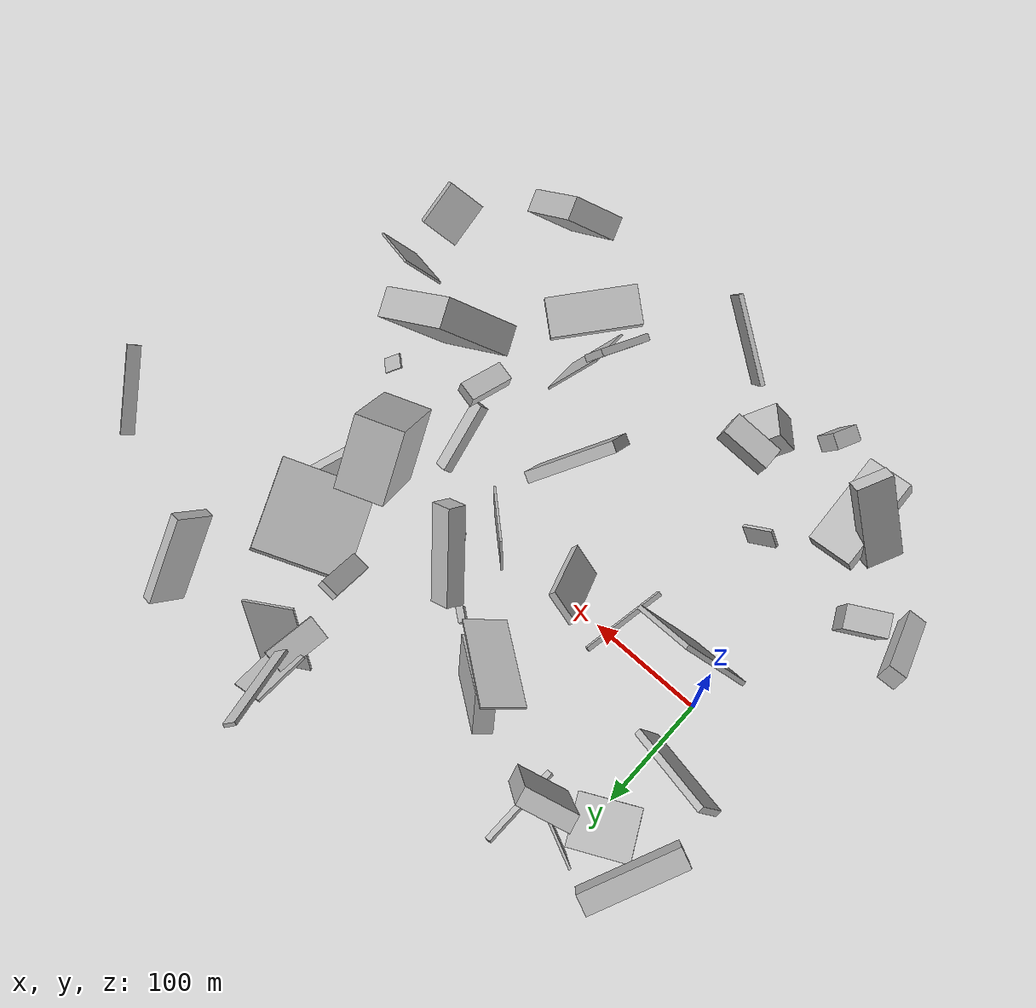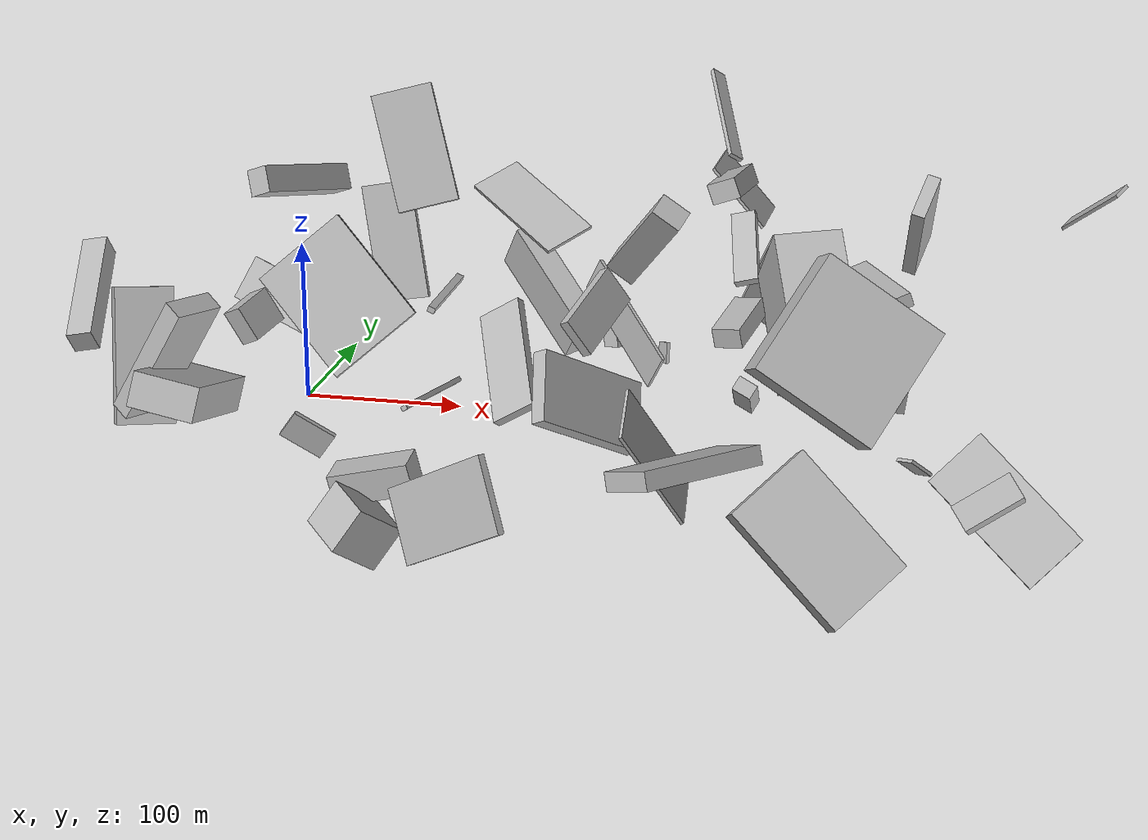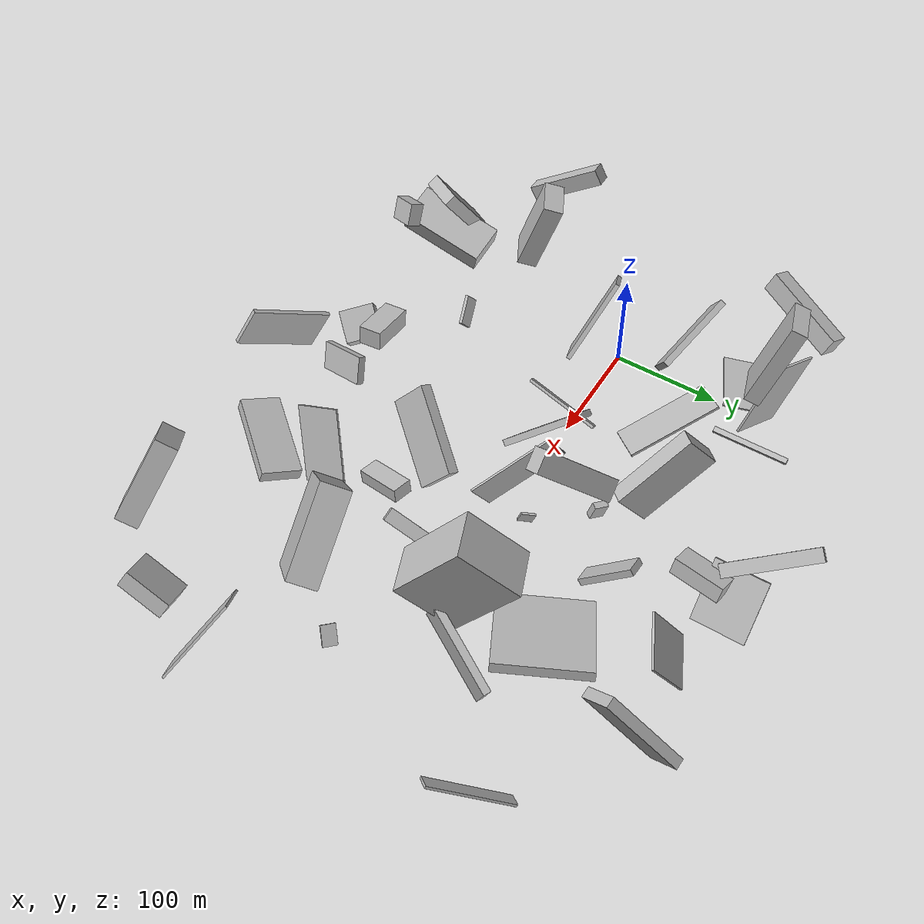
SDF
<sdf version="1.6">
 <world name="default">
  <scene>
   <sky><clouds><speed>12</speed></clouds></sky>
   <ambient>0.4 0.4 0.4 1</ambient>
   <background>0.7 0.7 0.7 1</background>
   <shadows>1</shadows>
  </scene>
  <gravity>0 0 -9.8066</gravity>
  <magnetic_field>6e-06 2.3e-05 -4.2e-05</magnetic_field>
  <physics default="0" name="default_physics" type="ode">
   <ode>
    <solver>
     <type>quick</type>
     <iters>10</iters>
     <sor>1.0</sor>
     <use_dynamic_moi_rescaling>0</use_dynamic_moi_rescaling>
    </solver>
    <constraints>
     <cfm>0</cfm>
     <erp>0.2</erp>
     <contact_max_correcting_vel>100</contact_max_correcting_vel>
     <contact_surface_layer>0.001</contact_surface_layer>
    </constraints>
   </ode>
   <max_step_size>0.004</max_step_size>
   <real_time_factor>1</real_time_factor>
   <real_time_update_rate>250</real_time_update_rate>
  </physics>
  <light name="sun" type="directional">
   <pose>0 0 10 0 0 0</pose>
   <diffuse>0.8 0.8 0.8 1</diffuse>
   <specular>0.2 0.2 0.2 1</specular>
   <attenuation>
    <range>1000</range>
    <constant>0.9</constant>
    <linear>0.01</linear>
    <quadratic>0.001</quadratic>
   </attenuation>
   <direction>-0.5 0.1 -0.9</direction>
  </light>
  <model name="building_1">
   <static>0</static>
   <pose>256.14687489634395 176.19731892148275 42.75911929868929 -2.1208258617934064 -1.069648358683528 -0.5919387908892968</pose>
   <link name="link">
    <gravity>0</gravity>
    <pose>0 0 22.5 0 0 0</pose>
    <collision name="collision"><geometry><box><size>68 2 45</size></box></geometry></collision>
    <visual name="visual">
     <cast_shadows>0</cast_shadows>
     <geometry><box><size>68 2 45</size></box></geometry>
     <material>
      <script>
       <uri>model://HANNAS_wall/materials/scripts</uri>
       <uri>model://HANNAS_wall/materials/textures</uri>
       <name>vrc/HANNAS_wall</name>
      </script>
     </material>
    </visual>
   </link>
  </model>
  <model name="building_2">
   <static>0</static>
   <pose>198.14643991655356 59.69206171939486 103.2743343759123 2.292135817209475 -0.5275697322255432 1.2179253865515187</pose>
   <link name="link">
    <gravity>0</gravity>
    <pose>0 0 10.0 0 0 0</pose>
    <collision name="collision"><geometry><box><size>16 80 20</size></box></geometry></collision>
    <visual name="visual">
     <cast_shadows>0</cast_shadows>
     <geometry><box><size>16 80 20</size></box></geometry>
     <material>
      <script>
       <uri>model://HANNAS_wall/materials/scripts</uri>
       <uri>model://HANNAS_wall/materials/textures</uri>
       <name>vrc/HANNAS_wall</name>
      </script>
     </material>
    </visual>
   </link>
  </model>
  <model name="building_3">
   <static>0</static>
   <pose>48.513230605919695 -206.2507549500514 125.44924148007365 -2.021049692877551 -0.2548536547631588 1.2147110140420994</pose>
   <link name="link">
    <gravity>0</gravity>
    <pose>0 0 6.5 0 0 0</pose>
    <collision name="collision"><geometry><box><size>23 20 13</size></box></geometry></collision>
    <visual name="visual">
     <cast_shadows>0</cast_shadows>
     <geometry><box><size>23 20 13</size></box></geometry>
     <material>
      <script>
       <uri>model://HANNAS_wall/materials/scripts</uri>
       <uri>model://HANNAS_wall/materials/textures</uri>
       <name>vrc/HANNAS_wall</name>
      </script>
     </material>
    </visual>
   </link>
  </model>
  <model name="building_4">
   <static>0</static>
   <pose>435.30108446581175 -186.08238360959592 47.60182413193428 -2.5400513474702726 -0.44818617513762776 -1.5521411225527284</pose>
   <link name="link">
    <gravity>0</gravity>
    <pose>0 0 7.5 0 0 0</pose>
    <collision name="collision"><geometry><box><size>42 35 15</size></box></geometry></collision>
    <visual name="visual">
     <cast_shadows>0</cast_shadows>
     <geometry><box><size>42 35 15</size></box></geometry>
     <material>
      <script>
       <uri>model://HANNAS_wall/materials/scripts</uri>
       <uri>model://HANNAS_wall/materials/textures</uri>
       <name>vrc/HANNAS_wall</name>
      </script>
     </material>
    </visual>
   </link>
  </model>
  <model name="building_5">
   <static>0</static>
   <pose>91.80238531270592 123.13677003518973 116.6077325222447 -2.395474113208462 -1.0845814114005428 -1.445576119381596</pose>
   <link name="link">
    <gravity>0</gravity>
    <pose>0 0 40.0 0 0 0</pose>
    <collision name="collision"><geometry><box><size>2 35 80</size></box></geometry></collision>
    <visual name="visual">
     <cast_shadows>0</cast_shadows>
     <geometry><box><size>2 35 80</size></box></geometry>
     <material>
      <script>
       <uri>model://HANNAS_wall/materials/scripts</uri>
       <uri>model://HANNAS_wall/materials/textures</uri>
       <name>vrc/HANNAS_wall</name>
      </script>
     </material>
    </visual>
   </link>
  </model>
  <model name="building_6">
   <static>0</static>
   <pose>250.7070358890668 122.92200680293433 75.05150535866981 -1.2134415953367816 -0.795423655152672 -1.8225929618306898</pose>
   <link name="link">
    <gravity>0</gravity>
    <pose>0 0 8.0 0 0 0</pose>
    <collision name="collision"><geometry><box><size>6 52 16</size></box></geometry></collision>
    <visual name="visual">
     <cast_shadows>0</cast_shadows>
     <geometry><box><size>6 52 16</size></box></geometry>
     <material>
      <script>
       <uri>model://HANNAS_wall/materials/scripts</uri>
       <uri>model://HANNAS_wall/materials/textures</uri>
       <name>vrc/HANNAS_wall</name>
      </script>
     </material>
    </visual>
   </link>
  </model>
  <model name="building_7">
   <static>0</static>
   <pose>253.98006089983133 -157.09275801732005 40.366525499160886 -0.6438904129560732 -0.9843101642020109 -2.4746779214177512</pose>
   <link name="link">
    <gravity>0</gravity>
    <pose>0 0 1.0 0 0 0</pose>
    <collision name="collision"><geometry><box><size>69 41 2</size></box></geometry></collision>
    <visual name="visual">
     <cast_shadows>0</cast_shadows>
     <geometry><box><size>69 41 2</size></box></geometry>
     <material>
      <script>
       <uri>model://HANNAS_wall/materials/scripts</uri>
       <uri>model://HANNAS_wall/materials/textures</uri>
       <name>vrc/HANNAS_wall</name>
      </script>
     </material>
    </visual>
   </link>
  </model>
  <model name="building_8">
   <static>0</static>
   <pose>-36.35845237890619 -178.79800450944495 55.7621811459193 0.5694395123547662 0.06924422588225351 1.1278896617542669</pose>
   <link name="link">
    <gravity>0</gravity>
    <pose>0 0 40.0 0 0 0</pose>
    <collision name="collision"><geometry><box><size>31 12 80</size></box></geometry></collision>
    <visual name="visual">
     <cast_shadows>0</cast_shadows>
     <geometry><box><size>31 12 80</size></box></geometry>
     <material>
      <script>
       <uri>model://HANNAS_wall/materials/scripts</uri>
       <uri>model://HANNAS_wall/materials/textures</uri>
       <name>vrc/HANNAS_wall</name>
      </script>
     </material>
    </visual>
   </link>
  </model>
  <model name="building_9">
   <static>0</static>
   <pose>382.1773523798151 -85.24985974943841 62.70645178025475 -0.5694267371559073 -0.8186631779120733 0.8545571527429053</pose>
   <link name="link">
    <gravity>0</gravity>
    <pose>0 0 40.0 0 0 0</pose>
    <collision name="collision"><geometry><box><size>78 26 80</size></box></geometry></collision>
    <visual name="visual">
     <cast_shadows>0</cast_shadows>
     <geometry><box><size>78 26 80</size></box></geometry>
     <material>
      <script>
       <uri>model://HANNAS_wall/materials/scripts</uri>
       <uri>model://HANNAS_wall/materials/textures</uri>
       <name>vrc/HANNAS_wall</name>
      </script>
     </material>
    </visual>
   </link>
  </model>
  <model name="building_10">
   <static>0</static>
   <pose>259.0964816295833 215.09156272913694 71.03071467226984 0.041509795159908006 -0.7117633305378234 -0.042157910771938395</pose>
   <link name="link">
    <gravity>0</gravity>
    <pose>0 0 26.0 0 0 0</pose>
    <collision name="collision"><geometry><box><size>2 45 52</size></box></geometry></collision>
    <visual name="visual">
     <cast_shadows>0</cast_shadows>
     <geometry><box><size>2 45 52</size></box></geometry>
     <material>
      <script>
       <uri>model://HANNAS_wall/materials/scripts</uri>
       <uri>model://HANNAS_wall/materials/textures</uri>
       <name>vrc/HANNAS_wall</name>
      </script>
     </material>
    </visual>
   </link>
  </model>
  <model name="building_11">
   <static>0</static>
   <pose>164.41680215650075 -266.4524403163214 45.50240759461684 -1.8248464443622658 1.0496374873276806 -0.8238485397256139</pose>
   <link name="link">
    <gravity>0</gravity>
    <pose>0 0 2.0 0 0 0</pose>
    <collision name="collision"><geometry><box><size>42 79 4</size></box></geometry></collision>
    <visual name="visual">
     <cast_shadows>0</cast_shadows>
     <geometry><box><size>42 79 4</size></box></geometry>
     <material>
      <script>
       <uri>model://HANNAS_wall/materials/scripts</uri>
       <uri>model://HANNAS_wall/materials/textures</uri>
       <name>vrc/HANNAS_wall</name>
      </script>
     </material>
    </visual>
   </link>
  </model>
  <model name="building_12">
   <static>0</static>
   <pose>252.57561169334554 -224.8749027039346 52.87829961739137 -1.629574550878503 -0.31033228449668476 -0.6721602091440545</pose>
   <link name="link">
    <gravity>0</gravity>
    <pose>0 0 40.0 0 0 0</pose>
    <collision name="collision"><geometry><box><size>35 11 80</size></box></geometry></collision>
    <visual name="visual">
     <cast_shadows>0</cast_shadows>
     <geometry><box><size>35 11 80</size></box></geometry>
     <material>
      <script>
       <uri>model://HANNAS_wall/materials/scripts</uri>
       <uri>model://HANNAS_wall/materials/textures</uri>
       <name>vrc/HANNAS_wall</name>
      </script>
     </material>
    </visual>
   </link>
  </model>
  <model name="building_13">
   <static>0</static>
   <pose>47.29654916785391 189.04918221990792 22.534556773205228 -1.6218031075715131 1.184552571679292 3.0866937267189254</pose>
   <link name="link">
    <gravity>0</gravity>
    <pose>0 0 35.0 0 0 0</pose>
    <collision name="collision"><geometry><box><size>4 5 70</size></box></geometry></collision>
    <visual name="visual">
     <cast_shadows>0</cast_shadows>
     <geometry><box><size>4 5 70</size></box></geometry>
     <material>
      <script>
       <uri>model://HANNAS_wall/materials/scripts</uri>
       <uri>model://HANNAS_wall/materials/textures</uri>
       <name>vrc/HANNAS_wall</name>
      </script>
     </material>
    </visual>
   </link>
  </model>
  <model name="building_14">
   <static>0</static>
   <pose>416.3944640494402 -127.44329685665309 42.47015253418546 -2.442847450483383 0.6897770203378276 -2.6332025903311247</pose>
   <link name="link">
    <gravity>0</gravity>
    <pose>0 0 40.0 0 0 0</pose>
    <collision name="collision"><geometry><box><size>39 2 80</size></box></geometry></collision>
    <visual name="visual">
     <cast_shadows>0</cast_shadows>
     <geometry><box><size>39 2 80</size></box></geometry>
     <material>
      <script>
       <uri>model://HANNAS_wall/materials/scripts</uri>
       <uri>model://HANNAS_wall/materials/textures</uri>
       <name>vrc/HANNAS_wall</name>
      </script>
     </material>
    </visual>
   </link>
  </model>
  <model name="building_15">
   <static>0</static>
   <pose>286.3506548649078 -65.09101542019634 85.09964936208702 -0.19900581224153946 0.10786835237938079 2.9349679582464665</pose>
   <link name="link">
    <gravity>0</gravity>
    <pose>0 0 6.0 0 0 0</pose>
    <collision name="collision"><geometry><box><size>17 39 12</size></box></geometry></collision>
    <visual name="visual">
     <cast_shadows>0</cast_shadows>
     <geometry><box><size>17 39 12</size></box></geometry>
     <material>
      <script>
       <uri>model://HANNAS_wall/materials/scripts</uri>
       <uri>model://HANNAS_wall/materials/textures</uri>
       <name>vrc/HANNAS_wall</name>
      </script>
     </material>
    </visual>
   </link>
  </model>
  <model name="building_16">
   <static>0</static>
   <pose>301.12233423168846 136.23088839255536 47.34590087545078 -1.4431178278783838 -1.2494062653338185 -2.792928260698391</pose>
   <link name="link">
    <gravity>0</gravity>
    <pose>0 0 40.0 0 0 0</pose>
    <collision name="collision"><geometry><box><size>9 80 80</size></box></geometry></collision>
    <visual name="visual">
     <cast_shadows>0</cast_shadows>
     <geometry><box><size>9 80 80</size></box></geometry>
     <material>
      <script>
       <uri>model://HANNAS_wall/materials/scripts</uri>
       <uri>model://HANNAS_wall/materials/textures</uri>
       <name>vrc/HANNAS_wall</name>
      </script>
     </material>
    </visual>
   </link>
  </model>
  <model name="building_17">
   <static>0</static>
   <pose>-85.47857623324433 -141.91529500272964 77.54299642358694 -0.9984908064959538 -0.17112378937288772 0.10234483949451077</pose>
   <link name="link">
    <gravity>0</gravity>
    <pose>0 0 36.5 0 0 0</pose>
    <collision name="collision"><geometry><box><size>15 15 73</size></box></geometry></collision>
    <visual name="visual">
     <cast_shadows>0</cast_shadows>
     <geometry><box><size>15 15 73</size></box></geometry>
     <material>
      <script>
       <uri>model://HANNAS_wall/materials/scripts</uri>
       <uri>model://HANNAS_wall/materials/textures</uri>
       <name>vrc/HANNAS_wall</name>
      </script>
     </material>
    </visual>
   </link>
  </model>
  <model name="building_18">
   <static>0</static>
   <pose>369.53067261675034 170.63398310022464 105.40229408665336 2.392389182375022 -0.2621588919042836 3.0489369347542</pose>
   <link name="link">
    <gravity>0</gravity>
    <pose>0 0 40.0 0 0 0</pose>
    <collision name="collision"><geometry><box><size>9 32 80</size></box></geometry></collision>
    <visual name="visual">
     <cast_shadows>0</cast_shadows>
     <geometry><box><size>9 32 80</size></box></geometry>
     <material>
      <script>
       <uri>model://HANNAS_wall/materials/scripts</uri>
       <uri>model://HANNAS_wall/materials/textures</uri>
       <name>vrc/HANNAS_wall</name>
      </script>
     </material>
    </visual>
   </link>
  </model>
  <model name="building_19">
   <static>0</static>
   <pose>283.90224953369795 -39.60461012810494 32.58187714278126 -0.5141053607219399 -0.49516017041395527 -1.4387924294520562</pose>
   <link name="link">
    <gravity>0</gravity>
    <pose>0 0 4.5 0 0 0</pose>
    <collision name="collision"><geometry><box><size>62 12 9</size></box></geometry></collision>
    <visual name="visual">
     <cast_shadows>0</cast_shadows>
     <geometry><box><size>62 12 9</size></box></geometry>
     <material>
      <script>
       <uri>model://HANNAS_wall/materials/scripts</uri>
       <uri>model://HANNAS_wall/materials/textures</uri>
       <name>vrc/HANNAS_wall</name>
      </script>
     </material>
    </visual>
   </link>
  </model>
  <model name="building_20">
   <static>0</static>
   <pose>15.080698301777229 -189.545907103436 67.39766306248679 0.9671827336389457 1.2447431018160569 -2.1594663415040145</pose>
   <link name="link">
    <gravity>0</gravity>
    <pose>0 0 19.0 0 0 0</pose>
    <collision name="collision"><geometry><box><size>20 79 38</size></box></geometry></collision>
    <visual name="visual">
     <cast_shadows>0</cast_shadows>
     <geometry><box><size>20 79 38</size></box></geometry>
     <material>
      <script>
       <uri>model://HANNAS_wall/materials/scripts</uri>
       <uri>model://HANNAS_wall/materials/textures</uri>
       <name>vrc/HANNAS_wall</name>
      </script>
     </material>
    </visual>
   </link>
  </model>
  <model name="building_21">
   <static>0</static>
   <pose>137.5285786500393 115.2768817927544 46.14559168266311 1.7849908024637937 0.690567645588202 -0.6268628953258618</pose>
   <link name="link">
    <gravity>0</gravity>
    <pose>0 0 8.0 0 0 0</pose>
    <collision name="collision"><geometry><box><size>80 37 16</size></box></geometry></collision>
    <visual name="visual">
     <cast_shadows>0</cast_shadows>
     <geometry><box><size>80 37 16</size></box></geometry>
     <material>
      <script>
       <uri>model://HANNAS_wall/materials/scripts</uri>
       <uri>model://HANNAS_wall/materials/textures</uri>
       <name>vrc/HANNAS_wall</name>
      </script>
     </material>
    </visual>
   </link>
  </model>
  <model name="building_22">
   <static>0</static>
   <pose>-61.729525301630275 -113.40491326123707 61.75016498846608 1.2723989186056393 0.06927240544099346 0.48465064957841253</pose>
   <link name="link">
    <gravity>0</gravity>
    <pose>0 0 9.5 0 0 0</pose>
    <collision name="collision"><geometry><box><size>34 80 19</size></box></geometry></collision>
    <visual name="visual">
     <cast_shadows>0</cast_shadows>
     <geometry><box><size>34 80 19</size></box></geometry>
     <material>
      <script>
       <uri>model://HANNAS_wall/materials/scripts</uri>
       <uri>model://HANNAS_wall/materials/textures</uri>
       <name>vrc/HANNAS_wall</name>
      </script>
     </material>
    </visual>
   </link>
  </model>
  <model name="building_23">
   <static>0</static>
   <pose>103.99019684538703 -196.39773306942777 39.737057966076534 -3.0886772886205525 -0.22229573405358344 0.044844700852758976</pose>
   <link name="link">
    <gravity>0</gravity>
    <pose>0 0 9.0 0 0 0</pose>
    <collision name="collision"><geometry><box><size>46 22 18</size></box></geometry></collision>
    <visual name="visual">
     <cast_shadows>0</cast_shadows>
     <geometry><box><size>46 22 18</size></box></geometry>
     <material>
      <script>
       <uri>model://HANNAS_wall/materials/scripts</uri>
       <uri>model://HANNAS_wall/materials/textures</uri>
       <name>vrc/HANNAS_wall</name>
      </script>
     </material>
    </visual>
   </link>
  </model>
  <model name="building_24">
   <static>0</static>
   <pose>4.473240322619071 -25.549810939958682 53.60360936091905 0.5143252418827903 -0.7773962972584395 2.846299341908039</pose>
   <link name="link">
    <gravity>0</gravity>
    <pose>0 0 31.5 0 0 0</pose>
    <collision name="collision"><geometry><box><size>78 4 63</size></box></geometry></collision>
    <visual name="visual">
     <cast_shadows>0</cast_shadows>
     <geometry><box><size>78 4 63</size></box></geometry>
     <material>
      <script>
       <uri>model://HANNAS_wall/materials/scripts</uri>
       <uri>model://HANNAS_wall/materials/textures</uri>
       <name>vrc/HANNAS_wall</name>
      </script>
     </material>
    </visual>
   </link>
  </model>
  <model name="building_25">
   <static>0</static>
   <pose>330.58905264282066 -254.89171051706106 70.98467831283122 2.46046162415545 0.4707049772248216 1.8886980620870288</pose>
   <link name="link">
    <gravity>0</gravity>
    <pose>0 0 39.0 0 0 0</pose>
    <collision name="collision"><geometry><box><size>21 49 78</size></box></geometry></collision>
    <visual name="visual">
     <cast_shadows>0</cast_shadows>
     <geometry><box><size>21 49 78</size></box></geometry>
     <material>
      <script>
       <uri>model://HANNAS_wall/materials/scripts</uri>
       <uri>model://HANNAS_wall/materials/textures</uri>
       <name>vrc/HANNAS_wall</name>
      </script>
     </material>
    </visual>
   </link>
  </model>
  <model name="building_26">
   <static>0</static>
   <pose>-31.592731999589386 51.118593371172494 28.01620706931916 -0.3682967798811812 -0.4771342723046361 -1.641945499919235</pose>
   <link name="link">
    <gravity>0</gravity>
    <pose>0 0 15.0 0 0 0</pose>
    <collision name="collision"><geometry><box><size>6 80 30</size></box></geometry></collision>
    <visual name="visual">
     <cast_shadows>0</cast_shadows>
     <geometry><box><size>6 80 30</size></box></geometry>
     <material>
      <script>
       <uri>model://HANNAS_wall/materials/scripts</uri>
       <uri>model://HANNAS_wall/materials/textures</uri>
       <name>vrc/HANNAS_wall</name>
      </script>
     </material>
    </visual>
   </link>
  </model>
  <model name="building_27">
   <static>0</static>
   <pose>144.76705035792193 -5.417207221571495 41.85322925698949 2.2721244876251836 -0.6146238023728462 -2.1594692112312295</pose>
   <link name="link">
    <gravity>0</gravity>
    <pose>0 0 15.0 0 0 0</pose>
    <collision name="collision"><geometry><box><size>6 77 30</size></box></geometry></collision>
    <visual name="visual">
     <cast_shadows>0</cast_shadows>
     <geometry><box><size>6 77 30</size></box></geometry>
     <material>
      <script>
       <uri>model://HANNAS_wall/materials/scripts</uri>
       <uri>model://HANNAS_wall/materials/textures</uri>
       <name>vrc/HANNAS_wall</name>
      </script>
     </material>
    </visual>
   </link>
  </model>
  <model name="building_28">
   <static>0</static>
   <pose>294.89372923957046 15.316743437573024 68.67204902458782 1.520431474123858 0.701502568601057 1.9108577778871092</pose>
   <link name="link">
    <gravity>0</gravity>
    <pose>0 0 21.0 0 0 0</pose>
    <collision name="collision"><geometry><box><size>64 80 42</size></box></geometry></collision>
    <visual name="visual">
     <cast_shadows>0</cast_shadows>
     <geometry><box><size>64 80 42</size></box></geometry>
     <material>
      <script>
       <uri>model://HANNAS_wall/materials/scripts</uri>
       <uri>model://HANNAS_wall/materials/textures</uri>
       <name>vrc/HANNAS_wall</name>
      </script>
     </material>
    </visual>
   </link>
  </model>
  <model name="building_29">
   <static>0</static>
   <pose>227.27286834951394 232.14736870596855 138.39383174866353 -2.4682084751666324 -0.5612644920806028 1.9331660929491756</pose>
   <link name="link">
    <gravity>0</gravity>
    <pose>0 0 1.5 0 0 0</pose>
    <collision name="collision"><geometry><box><size>80 11 3</size></box></geometry></collision>
    <visual name="visual">
     <cast_shadows>0</cast_shadows>
     <geometry><box><size>80 11 3</size></box></geometry>
     <material>
      <script>
       <uri>model://HANNAS_wall/materials/scripts</uri>
       <uri>model://HANNAS_wall/materials/textures</uri>
       <name>vrc/HANNAS_wall</name>
      </script>
     </material>
    </visual>
   </link>
  </model>
  <model name="building_30">
   <static>0</static>
   <pose>78.48416343105015 -50.18430041575794 15.955221621505213 1.7228902669273227 -0.9215993844630452 2.838169651857946</pose>
   <link name="link">
    <gravity>0</gravity>
    <pose>0 0 37.5 0 0 0</pose>
    <collision name="collision"><geometry><box><size>3 4 75</size></box></geometry></collision>
    <visual name="visual">
     <cast_shadows>0</cast_shadows>
     <geometry><box><size>3 4 75</size></box></geometry>
     <material>
      <script>
       <uri>model://HANNAS_wall/materials/scripts</uri>
       <uri>model://HANNAS_wall/materials/textures</uri>
       <name>vrc/HANNAS_wall</name>
      </script>
     </material>
    </visual>
   </link>
  </model>
  <model name="building_31">
   <static>0</static>
   <pose>40.14937881407639 142.70376449794264 86.50166764604798 -0.31325983878421104 -0.21974695468700736 0.29438807805032086</pose>
   <link name="link">
    <gravity>0</gravity>
    <pose>0 0 40.0 0 0 0</pose>
    <collision name="collision"><geometry><box><size>41 14 80</size></box></geometry></collision>
    <visual name="visual">
     <cast_shadows>0</cast_shadows>
     <geometry><box><size>41 14 80</size></box></geometry>
     <material>
      <script>
       <uri>model://HANNAS_wall/materials/scripts</uri>
       <uri>model://HANNAS_wall/materials/textures</uri>
       <name>vrc/HANNAS_wall</name>
      </script>
     </material>
    </visual>
   </link>
  </model>
  <model name="building_32">
   <static>0</static>
   <pose>353.6217793512962 47.24614930743824 30.613303484589615 -3.115896185405613 -0.3530361135459357 -2.0237248562947547</pose>
   <link name="link">
    <gravity>0</gravity>
    <pose>0 0 14.0 0 0 0</pose>
    <collision name="collision"><geometry><box><size>80 7 28</size></box></geometry></collision>
    <visual name="visual">
     <cast_shadows>0</cast_shadows>
     <geometry><box><size>80 7 28</size></box></geometry>
     <material>
      <script>
       <uri>model://HANNAS_wall/materials/scripts</uri>
       <uri>model://HANNAS_wall/materials/textures</uri>
       <name>vrc/HANNAS_wall</name>
      </script>
     </material>
    </visual>
   </link>
  </model>
  <model name="building_33">
   <static>0</static>
   <pose>58.72213264502008 -135.53167223541777 22.498356306035234 -0.9718654135803139 -0.21858111091670362 1.691107601941055</pose>
   <link name="link">
    <gravity>0</gravity>
    <pose>0 0 13.5 0 0 0</pose>
    <collision name="collision"><geometry><box><size>3 18 27</size></box></geometry></collision>
    <visual name="visual">
     <cast_shadows>0</cast_shadows>
     <geometry><box><size>3 18 27</size></box></geometry>
     <material>
      <script>
       <uri>model://HANNAS_wall/materials/scripts</uri>
       <uri>model://HANNAS_wall/materials/textures</uri>
       <name>vrc/HANNAS_wall</name>
      </script>
     </material>
    </visual>
   </link>
  </model>
  <model name="building_34">
   <static>0</static>
   <pose>223.34770536295818 31.314308052520126 41.32036526422124 2.8774592818403653 0.1647985482315003 0.547054674307692</pose>
   <link name="link">
    <gravity>0</gravity>
    <pose>0 0 6.5 0 0 0</pose>
    <collision name="collision"><geometry><box><size>2 13 13</size></box></geometry></collision>
    <visual name="visual">
     <cast_shadows>0</cast_shadows>
     <geometry><box><size>2 13 13</size></box></geometry>
     <material>
      <script>
       <uri>model://HANNAS_wall/materials/scripts</uri>
       <uri>model://HANNAS_wall/materials/textures</uri>
       <name>vrc/HANNAS_wall</name>
      </script>
     </material>
    </visual>
   </link>
  </model>
  <model name="building_35">
   <static>0</static>
   <pose>213.7821041013135 -171.65705039229442 111.11709146999591 -0.8466352955681608 0.9867580960495456 0.35628824047549024</pose>
   <link name="link">
    <gravity>0</gravity>
    <pose>0 0 24.5 0 0 0</pose>
    <collision name="collision"><geometry><box><size>23 6 49</size></box></geometry></collision>
    <visual name="visual">
     <cast_shadows>0</cast_shadows>
     <geometry><box><size>23 6 49</size></box></geometry>
     <material>
      <script>
       <uri>model://HANNAS_wall/materials/scripts</uri>
       <uri>model://HANNAS_wall/materials/textures</uri>
       <name>vrc/HANNAS_wall</name>
      </script>
     </material>
    </visual>
   </link>
  </model>
  <model name="building_36">
   <static>0</static>
   <pose>94.53797912963174 -233.49670839607 22.872254384157504 2.194006489754833 -0.18211445380027913 2.305591856990838</pose>
   <link name="link">
    <gravity>0</gravity>
    <pose>0 0 15.5 0 0 0</pose>
    <collision name="collision"><geometry><box><size>33 27 31</size></box></geometry></collision>
    <visual name="visual">
     <cast_shadows>0</cast_shadows>
     <geometry><box><size>33 27 31</size></box></geometry>
     <material>
      <script>
       <uri>model://HANNAS_wall/materials/scripts</uri>
       <uri>model://HANNAS_wall/materials/textures</uri>
       <name>vrc/HANNAS_wall</name>
      </script>
     </material>
    </visual>
   </link>
  </model>
  <model name="building_37">
   <static>0</static>
   <pose>178.53218846712426 -113.19191023521586 60.330044671672944 2.1029905512204703 0.42377410178230285 2.709335273990256</pose>
   <link name="link">
    <gravity>0</gravity>
    <pose>0 0 40.0 0 0 0</pose>
    <collision name="collision"><geometry><box><size>10 43 80</size></box></geometry></collision>
    <visual name="visual">
     <cast_shadows>0</cast_shadows>
     <geometry><box><size>10 43 80</size></box></geometry>
     <material>
      <script>
       <uri>model://HANNAS_wall/materials/scripts</uri>
       <uri>model://HANNAS_wall/materials/textures</uri>
       <name>vrc/HANNAS_wall</name>
      </script>
     </material>
    </visual>
   </link>
  </model>
  <model name="building_38">
   <static>0</static>
   <pose>183.51810843975073 76.79438040360006 28.55101532278285 1.4396782700548072 -0.22212166017606638 -0.6269882444836257</pose>
   <link name="link">
    <gravity>0</gravity>
    <pose>0 0 3.0 0 0 0</pose>
    <collision name="collision"><geometry><box><size>13 16 6</size></box></geometry></collision>
    <visual name="visual">
     <cast_shadows>0</cast_shadows>
     <geometry><box><size>13 16 6</size></box></geometry>
     <material>
      <script>
       <uri>model://HANNAS_wall/materials/scripts</uri>
       <uri>model://HANNAS_wall/materials/textures</uri>
       <name>vrc/HANNAS_wall</name>
      </script>
     </material>
    </visual>
   </link>
  </model>
  <model name="building_39">
   <static>0</static>
   <pose>461.2597179196302 158.21859590707274 95.95024068063539 -0.7172480631760827 -0.7929081568056245 3.0519956842952194</pose>
   <link name="link">
    <gravity>0</gravity>
    <pose>0 0 35.5 0 0 0</pose>
    <collision name="collision"><geometry><box><size>2 11 71</size></box></geometry></collision>
    <visual name="visual">
     <cast_shadows>0</cast_shadows>
     <geometry><box><size>2 11 71</size></box></geometry>
     <material>
      <script>
       <uri>model://HANNAS_wall/materials/scripts</uri>
       <uri>model://HANNAS_wall/materials/textures</uri>
       <name>vrc/HANNAS_wall</name>
      </script>
     </material>
    </visual>
   </link>
  </model>
  <model name="building_40">
   <static>0</static>
   <pose>-49.531983011064284 144.47122596180466 89.92008412178396 0.3777131315437362 -0.1919500757079653 -2.0076167161508174</pose>
   <link name="link">
    <gravity>0</gravity>
    <pose>0 0 9.0 0 0 0</pose>
    <collision name="collision"><geometry><box><size>80 17 18</size></box></geometry></collision>
    <visual name="visual">
     <cast_shadows>0</cast_shadows>
     <geometry><box><size>80 17 18</size></box></geometry>
     <material>
      <script>
       <uri>model://HANNAS_wall/materials/scripts</uri>
       <uri>model://HANNAS_wall/materials/textures</uri>
       <name>vrc/HANNAS_wall</name>
      </script>
     </material>
    </visual>
   </link>
  </model>
  <model name="building_41">
   <static>0</static>
   <pose>-11.047872856178161 123.29288948421868 25.63682595934342 -2.991115033076627 0.2187857252166901 2.0531301365580514</pose>
   <link name="link">
    <gravity>0</gravity>
    <pose>0 0 1.0 0 0 0</pose>
    <collision name="collision"><geometry><box><size>43 51 2</size></box></geometry></collision>
    <visual name="visual">
     <cast_shadows>0</cast_shadows>
     <geometry><box><size>43 51 2</size></box></geometry>
     <material>
      <script>
       <uri>model://HANNAS_wall/materials/scripts</uri>
       <uri>model://HANNAS_wall/materials/textures</uri>
       <name>vrc/HANNAS_wall</name>
      </script>
     </material>
    </visual>
   </link>
  </model>
  <model name="building_42">
   <static>0</static>
   <pose>12.642272851754598 155.7810171825811 56.3871779203875 1.460392678958525 -0.2667103984865213 -0.40020640432548943</pose>
   <link name="link">
    <gravity>0</gravity>
    <pose>0 0 1.0 0 0 0</pose>
    <collision name="collision"><geometry><box><size>45 80 2</size></box></geometry></collision>
    <visual name="visual">
     <cast_shadows>0</cast_shadows>
     <geometry><box><size>45 80 2</size></box></geometry>
     <material>
      <script>
       <uri>model://HANNAS_wall/materials/scripts</uri>
       <uri>model://HANNAS_wall/materials/textures</uri>
       <name>vrc/HANNAS_wall</name>
      </script>
     </material>
    </visual>
   </link>
  </model>
  <model name="building_43">
   <static>0</static>
   <pose>383.2480322657085 -61.91465308664977 12.330864110869769 -2.82647400261258 0.8580778460912322 -2.03397327044229</pose>
   <link name="link">
    <gravity>0</gravity>
    <pose>0 0 9.0 0 0 0</pose>
    <collision name="collision"><geometry><box><size>2 13 18</size></box></geometry></collision>
    <visual name="visual">
     <cast_shadows>0</cast_shadows>
     <geometry><box><size>2 13 18</size></box></geometry>
     <material>
      <script>
       <uri>model://HANNAS_wall/materials/scripts</uri>
       <uri>model://HANNAS_wall/materials/textures</uri>
       <name>vrc/HANNAS_wall</name>
      </script>
     </material>
    </visual>
   </link>
  </model>
  <model name="building_44">
   <static>0</static>
   <pose>226.90525889078305 -13.945917612641766 37.07208976085694 0.9565967583935011 0.010783772004553502 -2.324745269873254</pose>
   <link name="link">
    <gravity>0</gravity>
    <pose>0 0 40.0 0 0 0</pose>
    <collision name="collision"><geometry><box><size>2 27 80</size></box></geometry></collision>
    <visual name="visual">
     <cast_shadows>0</cast_shadows>
     <geometry><box><size>2 27 80</size></box></geometry>
     <material>
      <script>
       <uri>model://HANNAS_wall/materials/scripts</uri>
       <uri>model://HANNAS_wall/materials/textures</uri>
       <name>vrc/HANNAS_wall</name>
      </script>
     </material>
    </visual>
   </link>
  </model>
  <model name="building_45">
   <static>0</static>
   <pose>247.95541062245735 187.39732037087285 104.56035997393471 -3.0802930332200202 -1.2091368048898463 2.95632580092462</pose>
   <link name="link">
    <gravity>0</gravity>
    <pose>0 0 10.0 0 0 0</pose>
    <collision name="collision"><geometry><box><size>14 42 20</size></box></geometry></collision>
    <visual name="visual">
     <cast_shadows>0</cast_shadows>
     <geometry><box><size>14 42 20</size></box></geometry>
     <material>
      <script>
       <uri>model://HANNAS_wall/materials/scripts</uri>
       <uri>model://HANNAS_wall/materials/textures</uri>
       <name>vrc/HANNAS_wall</name>
      </script>
     </material>
    </visual>
   </link>
  </model>
 </world>
</sdf>
